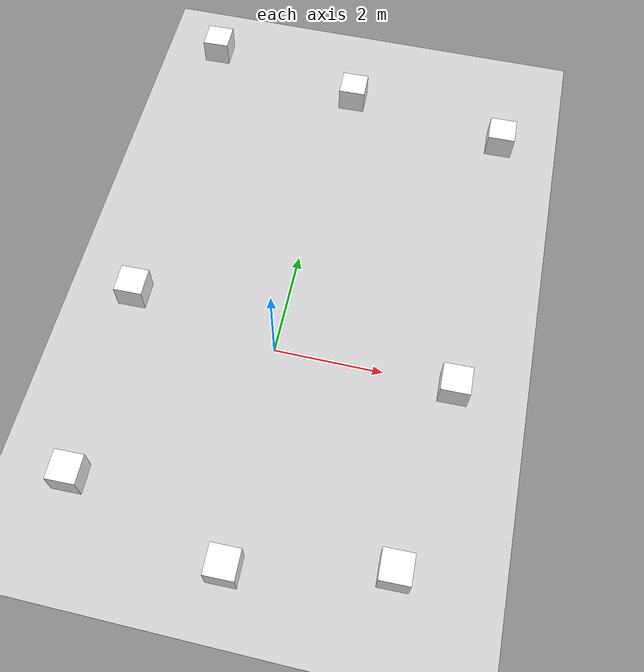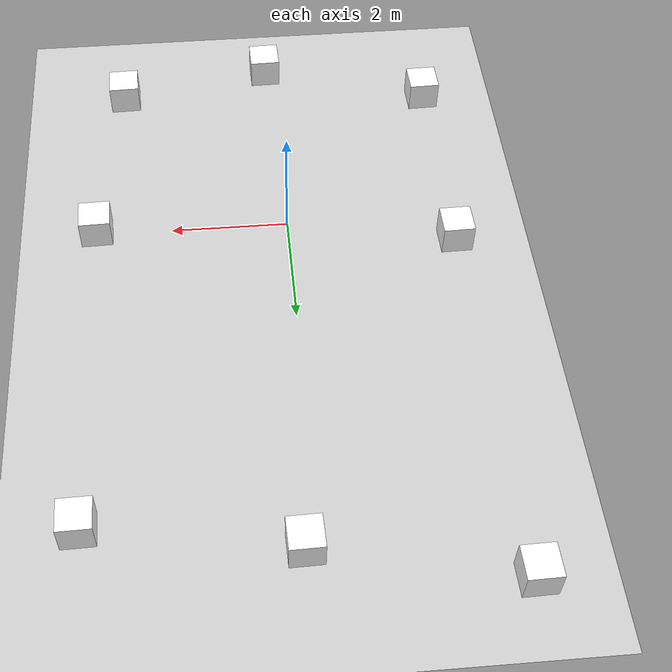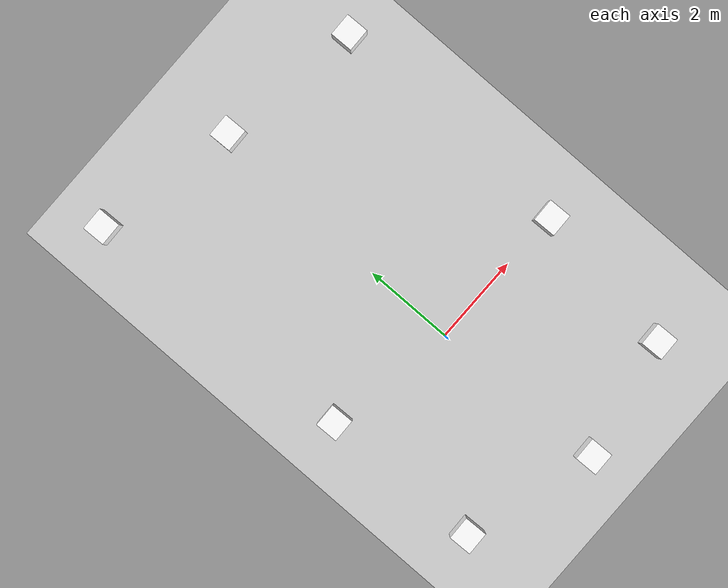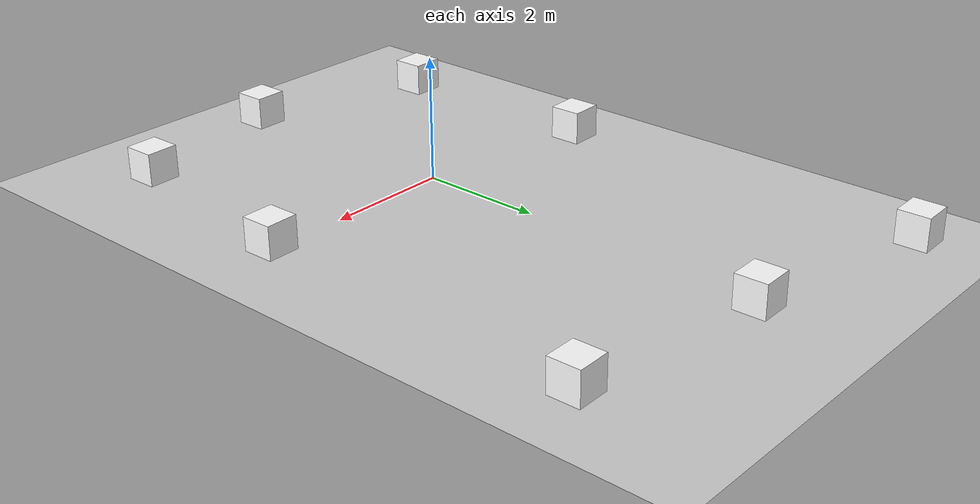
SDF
<sdf version="1.6">
 <world name="default">
  <light name="sun" type="directional">
   <pose>0 0 10 0 -0 0</pose>
   <diffuse>0.8 0.8 0.8 1</diffuse>
   <specular>0.1 0.1 0.1 1</specular>
   <attenuation>
    <range>1000</range>
    <constant>0.9</constant>
    <linear>0.01</linear>
    <quadratic>0.001</quadratic>
   </attenuation>
   <direction>-0.5 0.5 -1</direction>
  </light>
  <plugin name="SetupWorld" filename="libgazebo_plugins.so"/>
  <gravity>0 0 -9.8</gravity>
  <magnetic_field>6e-06 2.3e-05 -4.2e-05</magnetic_field>
  <atmosphere type="adiabatic"/>
  <physics name="default_physics" default="0" type="ode">
   <max_step_size>0.001</max_step_size>
   <real_time_factor>1</real_time_factor>
   <real_time_update_rate>1000</real_time_update_rate>
  </physics>
  <scene><ambient>0.4 0.4 0.4 1</ambient><background>0.7 0.7 0.7 1</background><shadows>1</shadows></scene>
  <spherical_coordinates>
   <surface_model>EARTH_WGS84</surface_model>
   <latitude_deg>0</latitude_deg>
   <longitude_deg>0</longitude_deg>
   <elevation>0</elevation>
   <heading_deg>0</heading_deg>
  </spherical_coordinates>
  <model name="mars_ground_plane">
   <static>1</static>
   <link name="link">
    <collision name="collision">
     <geometry><plane><normal>0 0 1</normal><size>100 100</size></plane></geometry>
     <surface><friction><ode><mu>100</mu><mu2>50</mu2></ode></friction></surface>
    </collision>
    <visual name="visual">
     <cast_shadows>0</cast_shadows>
     <geometry><plane><normal>0 0 1</normal><size>100 100</size></plane></geometry>
     <material>
      <script>
       <uri>model://media/materials/scripts</uri>
       <uri>model://media/materials/textures</uri>
       <name>MarsGroundPlane/Image</name>
      </script>
     </material>
    </visual>
   </link>
   <pose>-3.24107 -2.03706 1e-06 0 -0 0</pose>
  </model>
  <model name="at0_2">
   <link name="link">
    <inertial>
     <mass>0.01</mass>
     <inertia><ixx>4e-05</ixx><ixy>0</ixy><ixz>0</ixz><iyy>4e-05</iyy><iyz>0</iyz><izz>4e-05</izz></inertia>
    </inertial>
    <visual name="visual">
     <geometry><box><size>0.5 0.5 0.5</size></box></geometry>
     <material>
      <script>
       <uri>model://at0/materials/scripts</uri>
       <uri>model://at0/materials/textures</uri>
       <name>at0/Diffuse</name>
      </script>
      <ambient>1 1 1 1</ambient>
      <diffuse>1 1 1 1</diffuse>
      <specular>0 0 0 1</specular>
      <emissive>0 0 0 1</emissive>
      <shader type="vertex"><normal_map>__default__</normal_map></shader>
     </material>
    </visual>
    <visual name="ModelPreview_8::link::visual_2">
     <geometry><box><size>0.528063 0.520416 0.556558</size></box></geometry>
     <material>
      <script>
       <uri>model://at0/materials/scripts</uri>
       <uri>model://at0/materials/textures</uri>
       <name>at0/Diffuse</name>
      </script>
      <ambient>1 1 1 1</ambient>
      <diffuse>1 1 1 1</diffuse>
      <specular>0 0 0 1</specular>
      <emissive>0 0 0 1</emissive>
      <shader type="vertex"><normal_map>__default__</normal_map></shader>
     </material>
    </visual>
    <visual name="ModelPreview_8::link::visual_3">
     <geometry><box><size>0.528063 0.520416 0.556558</size></box></geometry>
     <material>
      <script>
       <uri>model://at0/materials/scripts</uri>
       <uri>model://at0/materials/textures</uri>
       <name>at0/Diffuse</name>
      </script>
      <ambient>1 1 1 1</ambient>
      <diffuse>1 1 1 1</diffuse>
      <specular>0 0 0 1</specular>
      <emissive>0 0 0 1</emissive>
      <shader type="vertex"><normal_map>__default__</normal_map></shader>
     </material>
    </visual>
    <visual name="ModelPreview_8::link::visual_1">
     <geometry><box><size>0.528063 0.520416 0.556558</size></box></geometry>
     <material>
      <script>
       <uri>model://at0/materials/scripts</uri>
       <uri>model://at0/materials/textures</uri>
       <name>at0/Diffuse</name>
      </script>
      <ambient>1 1 1 1</ambient>
      <diffuse>1 1 1 1</diffuse>
      <specular>0 0 0 1</specular>
      <emissive>0 0 0 1</emissive>
      <shader type="vertex"><normal_map>__default__</normal_map></shader>
     </material>
    </visual>
    <collision name="collision">
     <geometry><box><size>0.5 0.5 0.5</size></box></geometry>
     <surface>
      <friction>
       <ode><mu>0.8</mu><mu2>0.7</mu2><fdir1>0 0 0</fdir1><slip1>0</slip1><slip2>0</slip2></ode>
       <torsional>
        <coefficient>1</coefficient>
        <patch_radius>0</patch_radius>
        <surface_radius>0</surface_radius>
        <use_patch_radius>1</use_patch_radius>
        <ode><slip>0</slip></ode>
       </torsional>
      </friction>
      <bounce><restitution_coefficient>0</restitution_coefficient><threshold>1e+06</threshold></bounce>
      <contact>
       <collide_without_contact>0</collide_without_contact>
       <collide_without_contact_bitmask>1</collide_without_contact_bitmask>
       <collide_bitmask>1</collide_bitmask>
       <ode>
        <soft_cfm>0</soft_cfm>
        <soft_erp>0.2</soft_erp>
        <kp>1e+13</kp>
        <kd>1</kd>
        <max_vel>0.01</max_vel>
        <min_depth>0</min_depth>
       </ode>
       <bullet>
        <split_impulse>1</split_impulse>
        <split_impulse_penetration_threshold>-0.01</split_impulse_penetration_threshold>
        <soft_cfm>0</soft_cfm>
        <soft_erp>0.2</soft_erp>
        <kp>1e+13</kp>
        <kd>1</kd>
       </bullet>
      </contact>
     </surface>
    </collision>
   </link>
   <static>0</static>
   <pose>-2.79337 -3.03023 0.249996 0 1.7e-05 0.024549</pose>
  </model>
  <model name="Barrier Prelim Round">
   <static>1</static>
   <link name="link">
    <inertial>
     <mass>1</mass>
     <inertia><ixx>0.083</ixx><ixy>0</ixy><ixz>0</ixz><iyy>0</iyy><iyz>0</iyz><izz>0.083</izz></inertia>
    </inertial>
    <collision name="collision">
     <geometry><box><size>0.05 15 0.33</size></box></geometry>
     <surface><friction><ode><mu>1</mu><mu2>1</mu2><slip1>0</slip1><slip2>0</slip2></ode></friction></surface>
    </collision>
    <visual name="visual">
     <geometry><box><size>0.05 15 0.33</size></box></geometry>
     <material>
      <ambient>255 131 0 1</ambient>
      <diffuse>255 131 0 1</diffuse>
      <specular>0.1 0.1 0.1 1</specular>
      <emissive>0 0 0 0</emissive>
     </material>
    </visual>
   </link>
   <pose>-4.02381 0.804418 0 0 -0 0</pose>
  </model>
  <model name="Barrier Prelim Round_0">
   <static>1</static>
   <link name="link">
    <inertial>
     <mass>1</mass>
     <inertia><ixx>0.083</ixx><ixy>0</ixy><ixz>0</ixz><iyy>0</iyy><iyz>0</iyz><izz>0.083</izz></inertia>
    </inertial>
    <collision name="collision">
     <geometry><box><size>0.05 15 0.33</size></box></geometry>
     <surface><friction><ode><mu>1</mu><mu2>1</mu2><slip1>0</slip1><slip2>0</slip2></ode></friction></surface>
    </collision>
    <visual name="visual">
     <geometry><box><size>0.05 15 0.33</size></box></geometry>
     <material>
      <ambient>255 131 0 1</ambient>
      <diffuse>255 131 0 1</diffuse>
      <specular>0.1 0.1 0.1 1</specular>
      <emissive>0 0 0 0</emissive>
     </material>
    </visual>
   </link>
   <pose>4.04025 0.918707 0 0 -0 0</pose>
  </model>
  <model name="Barrier Prelim Round_1">
   <static>1</static>
   <link name="link">
    <inertial>
     <mass>1</mass>
     <inertia><ixx>0.083</ixx><ixy>0</ixy><ixz>0</ixz><iyy>0</iyy><iyz>0</iyz><izz>0.083</izz></inertia>
    </inertial>
    <collision name="collision">
     <geometry><box><size>0.05 15 0.33</size></box></geometry>
     <surface><friction><ode><mu>1</mu><mu2>1</mu2><slip1>0</slip1><slip2>0</slip2></ode></friction></surface>
    </collision>
    <visual name="visual">
     <geometry><box><size>0.05 15 0.33</size></box></geometry>
     <material>
      <ambient>255 131 0 1</ambient>
      <diffuse>255 131 0 1</diffuse>
      <specular>0.1 0.1 0.1 1</specular>
      <emissive>0 0 0 0</emissive>
     </material>
    </visual>
   </link>
   <pose>0.004597 8.34456 0 0 0 -1.55768</pose>
  </model>
  <model name="Barrier Prelim Round_1_clone">
   <static>1</static>
   <link name="link">
    <inertial>
     <mass>1</mass>
     <inertia><ixx>0.083</ixx><ixy>0</ixy><ixz>0</ixz><iyy>0</iyy><iyz>0</iyz><izz>0.083</izz></inertia>
    </inertial>
    <collision name="collision">
     <geometry><box><size>0.05 15 0.33</size></box></geometry>
     <surface><friction><ode><mu>1</mu><mu2>1</mu2><slip1>0</slip1><slip2>0</slip2></ode></friction></surface>
    </collision>
    <visual name="visual">
     <geometry><box><size>0.05 15 0.33</size></box></geometry>
     <material>
      <ambient>255 131 0 1</ambient>
      <diffuse>255 131 0 1</diffuse>
      <specular>0.1 0.1 0.1 1</specular>
      <emissive>0 0 0 0</emissive>
     </material>
    </visual>
   </link>
   <pose>0.695564 -4.56386 0 0 0 -1.55768</pose>
  </model>
  <model name="at0_2_clone">
   <link name="link">
    <inertial>
     <mass>0.01</mass>
     <inertia><ixx>4e-05</ixx><ixy>0</ixy><ixz>0</ixz><iyy>4e-05</iyy><iyz>0</iyz><izz>4e-05</izz></inertia>
    </inertial>
    <visual name="visual">
     <geometry><box><size>0.5 0.5 0.5</size></box></geometry>
     <material>
      <script>
       <uri>model://at0/materials/scripts</uri>
       <uri>model://at0/materials/textures</uri>
       <name>at0/Diffuse</name>
      </script>
      <ambient>1 1 1 1</ambient>
      <diffuse>1 1 1 1</diffuse>
      <specular>0 0 0 1</specular>
      <emissive>0 0 0 1</emissive>
      <shader type="vertex"><normal_map>__default__</normal_map></shader>
     </material>
    </visual>
    <visual name="ModelPreview_8::link::visual_2">
     <geometry><box><size>0.528063 0.520416 0.556558</size></box></geometry>
     <material>
      <script>
       <uri>model://at0/materials/scripts</uri>
       <uri>model://at0/materials/textures</uri>
       <name>at0/Diffuse</name>
      </script>
      <ambient>1 1 1 1</ambient>
      <diffuse>1 1 1 1</diffuse>
      <specular>0 0 0 1</specular>
      <emissive>0 0 0 1</emissive>
      <shader type="vertex"><normal_map>__default__</normal_map></shader>
     </material>
    </visual>
    <visual name="ModelPreview_8::link::visual_3">
     <geometry><box><size>0.528063 0.520416 0.556558</size></box></geometry>
     <material>
      <script>
       <uri>model://at0/materials/scripts</uri>
       <uri>model://at0/materials/textures</uri>
       <name>at0/Diffuse</name>
      </script>
      <ambient>1 1 1 1</ambient>
      <diffuse>1 1 1 1</diffuse>
      <specular>0 0 0 1</specular>
      <emissive>0 0 0 1</emissive>
      <shader type="vertex"><normal_map>__default__</normal_map></shader>
     </material>
    </visual>
    <visual name="ModelPreview_8::link::visual_1">
     <geometry><box><size>0.528063 0.520416 0.556558</size></box></geometry>
     <material>
      <script>
       <uri>model://at0/materials/scripts</uri>
       <uri>model://at0/materials/textures</uri>
       <name>at0/Diffuse</name>
      </script>
      <ambient>1 1 1 1</ambient>
      <diffuse>1 1 1 1</diffuse>
      <specular>0 0 0 1</specular>
      <emissive>0 0 0 1</emissive>
      <shader type="vertex"><normal_map>__default__</normal_map></shader>
     </material>
    </visual>
    <collision name="collision">
     <geometry><box><size>0.5 0.5 0.5</size></box></geometry>
     <surface>
      <friction>
       <ode><mu>0.8</mu><mu2>0.7</mu2><fdir1>0 0 0</fdir1><slip1>0</slip1><slip2>0</slip2></ode>
       <torsional>
        <coefficient>1</coefficient>
        <patch_radius>0</patch_radius>
        <surface_radius>0</surface_radius>
        <use_patch_radius>1</use_patch_radius>
        <ode><slip>0</slip></ode>
       </torsional>
      </friction>
      <bounce><restitution_coefficient>0</restitution_coefficient><threshold>1e+06</threshold></bounce>
      <contact>
       <collide_without_contact>0</collide_without_contact>
       <collide_without_contact_bitmask>1</collide_without_contact_bitmask>
       <collide_bitmask>1</collide_bitmask>
       <ode>
        <soft_cfm>0</soft_cfm>
        <soft_erp>0.2</soft_erp>
        <kp>1e+13</kp>
        <kd>1</kd>
        <max_vel>0.01</max_vel>
        <min_depth>0</min_depth>
       </ode>
       <bullet>
        <split_impulse>1</split_impulse>
        <split_impulse_penetration_threshold>-0.01</split_impulse_penetration_threshold>
        <soft_cfm>0</soft_cfm>
        <soft_erp>0.2</soft_erp>
        <kp>1e+13</kp>
        <kd>1</kd>
       </bullet>
      </contact>
     </surface>
    </collision>
   </link>
   <static>0</static>
   <pose>2.81306 -3.38791 0.25 -2e-06 -7e-06 0.023993</pose>
  </model>
  <model name="at0_2_clone_0">
   <link name="link">
    <inertial>
     <mass>0.01</mass>
     <inertia><ixx>4e-05</ixx><ixy>0</ixy><ixz>0</ixz><iyy>4e-05</iyy><iyz>0</iyz><izz>4e-05</izz></inertia>
    </inertial>
    <visual name="visual">
     <geometry><box><size>0.5 0.5 0.5</size></box></geometry>
     <material>
      <script>
       <uri>model://at0/materials/scripts</uri>
       <uri>model://at0/materials/textures</uri>
       <name>at0/Diffuse</name>
      </script>
      <ambient>1 1 1 1</ambient>
      <diffuse>1 1 1 1</diffuse>
      <specular>0 0 0 1</specular>
      <emissive>0 0 0 1</emissive>
      <shader type="vertex"><normal_map>__default__</normal_map></shader>
     </material>
    </visual>
    <visual name="ModelPreview_8::link::visual_2">
     <geometry><box><size>0.528063 0.520416 0.556558</size></box></geometry>
     <material>
      <script>
       <uri>model://at0/materials/scripts</uri>
       <uri>model://at0/materials/textures</uri>
       <name>at0/Diffuse</name>
      </script>
      <ambient>1 1 1 1</ambient>
      <diffuse>1 1 1 1</diffuse>
      <specular>0 0 0 1</specular>
      <emissive>0 0 0 1</emissive>
      <shader type="vertex"><normal_map>__default__</normal_map></shader>
     </material>
    </visual>
    <visual name="ModelPreview_8::link::visual_3">
     <geometry><box><size>0.528063 0.520416 0.556558</size></box></geometry>
     <material>
      <script>
       <uri>model://at0/materials/scripts</uri>
       <uri>model://at0/materials/textures</uri>
       <name>at0/Diffuse</name>
      </script>
      <ambient>1 1 1 1</ambient>
      <diffuse>1 1 1 1</diffuse>
      <specular>0 0 0 1</specular>
      <emissive>0 0 0 1</emissive>
      <shader type="vertex"><normal_map>__default__</normal_map></shader>
     </material>
    </visual>
    <visual name="ModelPreview_8::link::visual_1">
     <geometry><box><size>0.528063 0.520416 0.556558</size></box></geometry>
     <material>
      <script>
       <uri>model://at0/materials/scripts</uri>
       <uri>model://at0/materials/textures</uri>
       <name>at0/Diffuse</name>
      </script>
      <ambient>1 1 1 1</ambient>
      <diffuse>1 1 1 1</diffuse>
      <specular>0 0 0 1</specular>
      <emissive>0 0 0 1</emissive>
      <shader type="vertex"><normal_map>__default__</normal_map></shader>
     </material>
    </visual>
    <collision name="collision">
     <geometry><box><size>0.5 0.5 0.5</size></box></geometry>
     <surface>
      <friction>
       <ode><mu>0.8</mu><mu2>0.7</mu2><fdir1>0 0 0</fdir1><slip1>0</slip1><slip2>0</slip2></ode>
       <torsional>
        <coefficient>1</coefficient>
        <patch_radius>0</patch_radius>
        <surface_radius>0</surface_radius>
        <use_patch_radius>1</use_patch_radius>
        <ode><slip>0</slip></ode>
       </torsional>
      </friction>
      <bounce><restitution_coefficient>0</restitution_coefficient><threshold>1e+06</threshold></bounce>
      <contact>
       <collide_without_contact>0</collide_without_contact>
       <collide_without_contact_bitmask>1</collide_without_contact_bitmask>
       <collide_bitmask>1</collide_bitmask>
       <ode>
        <soft_cfm>0</soft_cfm>
        <soft_erp>0.2</soft_erp>
        <kp>1e+13</kp>
        <kd>1</kd>
        <max_vel>0.01</max_vel>
        <min_depth>0</min_depth>
       </ode>
       <bullet>
        <split_impulse>1</split_impulse>
        <split_impulse_penetration_threshold>-0.01</split_impulse_penetration_threshold>
        <soft_cfm>0</soft_cfm>
        <soft_erp>0.2</soft_erp>
        <kp>1e+13</kp>
        <kd>1</kd>
       </bullet>
      </contact>
     </surface>
    </collision>
   </link>
   <static>0</static>
   <pose>3.42848 5.60927 0.249996 0 -1.7e-05 0.017253</pose>
  </model>
  <model name="at0_2_clone_1">
   <link name="link">
    <inertial>
     <mass>0.01</mass>
     <inertia><ixx>4e-05</ixx><ixy>0</ixy><ixz>0</ixz><iyy>4e-05</iyy><iyz>0</iyz><izz>4e-05</izz></inertia>
    </inertial>
    <visual name="visual">
     <geometry><box><size>0.5 0.5 0.5</size></box></geometry>
     <material>
      <script>
       <uri>model://at0/materials/scripts</uri>
       <uri>model://at0/materials/textures</uri>
       <name>at0/Diffuse</name>
      </script>
      <ambient>1 1 1 1</ambient>
      <diffuse>1 1 1 1</diffuse>
      <specular>0 0 0 1</specular>
      <emissive>0 0 0 1</emissive>
      <shader type="vertex"><normal_map>__default__</normal_map></shader>
     </material>
    </visual>
    <visual name="ModelPreview_8::link::visual_2">
     <geometry><box><size>0.528063 0.520416 0.556558</size></box></geometry>
     <material>
      <script>
       <uri>model://at0/materials/scripts</uri>
       <uri>model://at0/materials/textures</uri>
       <name>at0/Diffuse</name>
      </script>
      <ambient>1 1 1 1</ambient>
      <diffuse>1 1 1 1</diffuse>
      <specular>0 0 0 1</specular>
      <emissive>0 0 0 1</emissive>
      <shader type="vertex"><normal_map>__default__</normal_map></shader>
     </material>
    </visual>
    <visual name="ModelPreview_8::link::visual_3">
     <geometry><box><size>0.528063 0.520416 0.556558</size></box></geometry>
     <material>
      <script>
       <uri>model://at0/materials/scripts</uri>
       <uri>model://at0/materials/textures</uri>
       <name>at0/Diffuse</name>
      </script>
      <ambient>1 1 1 1</ambient>
      <diffuse>1 1 1 1</diffuse>
      <specular>0 0 0 1</specular>
      <emissive>0 0 0 1</emissive>
      <shader type="vertex"><normal_map>__default__</normal_map></shader>
     </material>
    </visual>
    <visual name="ModelPreview_8::link::visual_1">
     <geometry><box><size>0.528063 0.520416 0.556558</size></box></geometry>
     <material>
      <script>
       <uri>model://at0/materials/scripts</uri>
       <uri>model://at0/materials/textures</uri>
       <name>at0/Diffuse</name>
      </script>
      <ambient>1 1 1 1</ambient>
      <diffuse>1 1 1 1</diffuse>
      <specular>0 0 0 1</specular>
      <emissive>0 0 0 1</emissive>
      <shader type="vertex"><normal_map>__default__</normal_map></shader>
     </material>
    </visual>
    <collision name="collision">
     <geometry><box><size>0.5 0.5 0.5</size></box></geometry>
     <surface>
      <friction>
       <ode><mu>0.8</mu><mu2>0.7</mu2><fdir1>0 0 0</fdir1><slip1>0</slip1><slip2>0</slip2></ode>
       <torsional>
        <coefficient>1</coefficient>
        <patch_radius>0</patch_radius>
        <surface_radius>0</surface_radius>
        <use_patch_radius>1</use_patch_radius>
        <ode><slip>0</slip></ode>
       </torsional>
      </friction>
      <bounce><restitution_coefficient>0</restitution_coefficient><threshold>1e+06</threshold></bounce>
      <contact>
       <collide_without_contact>0</collide_without_contact>
       <collide_without_contact_bitmask>1</collide_without_contact_bitmask>
       <collide_bitmask>1</collide_bitmask>
       <ode>
        <soft_cfm>0</soft_cfm>
        <soft_erp>0.2</soft_erp>
        <kp>1e+13</kp>
        <kd>1</kd>
        <max_vel>0.01</max_vel>
        <min_depth>0</min_depth>
       </ode>
       <bullet>
        <split_impulse>1</split_impulse>
        <split_impulse_penetration_threshold>-0.01</split_impulse_penetration_threshold>
        <soft_cfm>0</soft_cfm>
        <soft_erp>0.2</soft_erp>
        <kp>1e+13</kp>
        <kd>1</kd>
       </bullet>
      </contact>
     </surface>
    </collision>
   </link>
   <static>0</static>
   <pose>0.224974 6.14431 0.25 2e-06 7e-06 0.021459</pose>
  </model>
  <model name="at0_2_clone_2">
   <link name="link">
    <inertial>
     <mass>0.01</mass>
     <inertia><ixx>4e-05</ixx><ixy>0</ixy><ixz>0</ixz><iyy>4e-05</iyy><iyz>0</iyz><izz>4e-05</izz></inertia>
    </inertial>
    <visual name="visual">
     <geometry><box><size>0.5 0.5 0.5</size></box></geometry>
     <material>
      <script>
       <uri>model://at0/materials/scripts</uri>
       <uri>model://at0/materials/textures</uri>
       <name>at0/Diffuse</name>
      </script>
      <ambient>1 1 1 1</ambient>
      <diffuse>1 1 1 1</diffuse>
      <specular>0 0 0 1</specular>
      <emissive>0 0 0 1</emissive>
      <shader type="vertex"><normal_map>__default__</normal_map></shader>
     </material>
    </visual>
    <visual name="ModelPreview_8::link::visual_2">
     <geometry><box><size>0.528063 0.520416 0.556558</size></box></geometry>
     <material>
      <script>
       <uri>model://at0/materials/scripts</uri>
       <uri>model://at0/materials/textures</uri>
       <name>at0/Diffuse</name>
      </script>
      <ambient>1 1 1 1</ambient>
      <diffuse>1 1 1 1</diffuse>
      <specular>0 0 0 1</specular>
      <emissive>0 0 0 1</emissive>
      <shader type="vertex"><normal_map>__default__</normal_map></shader>
     </material>
    </visual>
    <visual name="ModelPreview_8::link::visual_3">
     <geometry><box><size>0.528063 0.520416 0.556558</size></box></geometry>
     <material>
      <script>
       <uri>model://at0/materials/scripts</uri>
       <uri>model://at0/materials/textures</uri>
       <name>at0/Diffuse</name>
      </script>
      <ambient>1 1 1 1</ambient>
      <diffuse>1 1 1 1</diffuse>
      <specular>0 0 0 1</specular>
      <emissive>0 0 0 1</emissive>
      <shader type="vertex"><normal_map>__default__</normal_map></shader>
     </material>
    </visual>
    <visual name="ModelPreview_8::link::visual_1">
     <geometry><box><size>0.528063 0.520416 0.556558</size></box></geometry>
     <material>
      <script>
       <uri>model://at0/materials/scripts</uri>
       <uri>model://at0/materials/textures</uri>
       <name>at0/Diffuse</name>
      </script>
      <ambient>1 1 1 1</ambient>
      <diffuse>1 1 1 1</diffuse>
      <specular>0 0 0 1</specular>
      <emissive>0 0 0 1</emissive>
      <shader type="vertex"><normal_map>__default__</normal_map></shader>
     </material>
    </visual>
    <collision name="collision">
     <geometry><box><size>0.5 0.5 0.5</size></box></geometry>
     <surface>
      <friction>
       <ode><mu>0.8</mu><mu2>0.7</mu2><fdir1>0 0 0</fdir1><slip1>0</slip1><slip2>0</slip2></ode>
       <torsional>
        <coefficient>1</coefficient>
        <patch_radius>0</patch_radius>
        <surface_radius>0</surface_radius>
        <use_patch_radius>1</use_patch_radius>
        <ode><slip>0</slip></ode>
       </torsional>
      </friction>
      <bounce><restitution_coefficient>0</restitution_coefficient><threshold>1e+06</threshold></bounce>
      <contact>
       <collide_without_contact>0</collide_without_contact>
       <collide_without_contact_bitmask>1</collide_without_contact_bitmask>
       <collide_bitmask>1</collide_bitmask>
       <ode>
        <soft_cfm>0</soft_cfm>
        <soft_erp>0.2</soft_erp>
        <kp>1e+13</kp>
        <kd>1</kd>
        <max_vel>0.01</max_vel>
        <min_depth>0</min_depth>
       </ode>
       <bullet>
        <split_impulse>1</split_impulse>
        <split_impulse_penetration_threshold>-0.01</split_impulse_penetration_threshold>
        <soft_cfm>0</soft_cfm>
        <soft_erp>0.2</soft_erp>
        <kp>1e+13</kp>
        <kd>1</kd>
       </bullet>
      </contact>
     </surface>
    </collision>
   </link>
   <static>0</static>
   <pose>-2.93462 6.84105 0.249996 0 -1.7e-05 0.020189</pose>
  </model>
  <model name="at0_2_clone_1_clone">
   <link name="link">
    <inertial>
     <mass>0.01</mass>
     <inertia><ixx>4e-05</ixx><ixy>0</ixy><ixz>0</ixz><iyy>4e-05</iyy><iyz>0</iyz><izz>4e-05</izz></inertia>
    </inertial>
    <visual name="visual">
     <geometry><box><size>0.5 0.5 0.5</size></box></geometry>
     <material>
      <script>
       <uri>model://at0/materials/scripts</uri>
       <uri>model://at0/materials/textures</uri>
       <name>at0/Diffuse</name>
      </script>
      <ambient>1 1 1 1</ambient>
      <diffuse>1 1 1 1</diffuse>
      <specular>0 0 0 1</specular>
      <emissive>0 0 0 1</emissive>
      <shader type="vertex"><normal_map>__default__</normal_map></shader>
     </material>
    </visual>
    <visual name="ModelPreview_8::link::visual_2">
     <geometry><box><size>0.528063 0.520416 0.556558</size></box></geometry>
     <material>
      <script>
       <uri>model://at0/materials/scripts</uri>
       <uri>model://at0/materials/textures</uri>
       <name>at0/Diffuse</name>
      </script>
      <ambient>1 1 1 1</ambient>
      <diffuse>1 1 1 1</diffuse>
      <specular>0 0 0 1</specular>
      <emissive>0 0 0 1</emissive>
      <shader type="vertex"><normal_map>__default__</normal_map></shader>
     </material>
    </visual>
    <visual name="ModelPreview_8::link::visual_3">
     <geometry><box><size>0.528063 0.520416 0.556558</size></box></geometry>
     <material>
      <script>
       <uri>model://at0/materials/scripts</uri>
       <uri>model://at0/materials/textures</uri>
       <name>at0/Diffuse</name>
      </script>
      <ambient>1 1 1 1</ambient>
      <diffuse>1 1 1 1</diffuse>
      <specular>0 0 0 1</specular>
      <emissive>0 0 0 1</emissive>
      <shader type="vertex"><normal_map>__default__</normal_map></shader>
     </material>
    </visual>
    <visual name="ModelPreview_8::link::visual_1">
     <geometry><box><size>0.528063 0.520416 0.556558</size></box></geometry>
     <material>
      <script>
       <uri>model://at0/materials/scripts</uri>
       <uri>model://at0/materials/textures</uri>
       <name>at0/Diffuse</name>
      </script>
      <ambient>1 1 1 1</ambient>
      <diffuse>1 1 1 1</diffuse>
      <specular>0 0 0 1</specular>
      <emissive>0 0 0 1</emissive>
      <shader type="vertex"><normal_map>__default__</normal_map></shader>
     </material>
    </visual>
    <collision name="collision">
     <geometry><box><size>0.5 0.5 0.5</size></box></geometry>
     <surface>
      <friction>
       <ode><mu>0.8</mu><mu2>0.7</mu2><fdir1>0 0 0</fdir1><slip1>0</slip1><slip2>0</slip2></ode>
       <torsional>
        <coefficient>1</coefficient>
        <patch_radius>0</patch_radius>
        <surface_radius>0</surface_radius>
        <use_patch_radius>1</use_patch_radius>
        <ode><slip>0</slip></ode>
       </torsional>
      </friction>
      <bounce><restitution_coefficient>0</restitution_coefficient><threshold>1e+06</threshold></bounce>
      <contact>
       <collide_without_contact>0</collide_without_contact>
       <collide_without_contact_bitmask>1</collide_without_contact_bitmask>
       <collide_bitmask>1</collide_bitmask>
       <ode>
        <soft_cfm>0</soft_cfm>
        <soft_erp>0.2</soft_erp>
        <kp>1e+13</kp>
        <kd>1</kd>
        <max_vel>0.01</max_vel>
        <min_depth>0</min_depth>
       </ode>
       <bullet>
        <split_impulse>1</split_impulse>
        <split_impulse_penetration_threshold>-0.01</split_impulse_penetration_threshold>
        <soft_cfm>0</soft_cfm>
        <soft_erp>0.2</soft_erp>
        <kp>1e+13</kp>
        <kd>1</kd>
       </bullet>
      </contact>
     </surface>
    </collision>
   </link>
   <static>0</static>
   <pose>3.286 -0.045976 0.25 2e-06 7e-06 0.021459</pose>
  </model>
  <model name="at0_2_clone_1_clone_0">
   <link name="link">
    <inertial>
     <mass>0.01</mass>
     <inertia><ixx>4e-05</ixx><ixy>0</ixy><ixz>0</ixz><iyy>4e-05</iyy><iyz>0</iyz><izz>4e-05</izz></inertia>
    </inertial>
    <visual name="visual">
     <geometry><box><size>0.5 0.5 0.5</size></box></geometry>
     <material>
      <script>
       <uri>model://at0/materials/scripts</uri>
       <uri>model://at0/materials/textures</uri>
       <name>at0/Diffuse</name>
      </script>
      <ambient>1 1 1 1</ambient>
      <diffuse>1 1 1 1</diffuse>
      <specular>0 0 0 1</specular>
      <emissive>0 0 0 1</emissive>
      <shader type="vertex"><normal_map>__default__</normal_map></shader>
     </material>
    </visual>
    <visual name="ModelPreview_8::link::visual_2">
     <geometry><box><size>0.528063 0.520416 0.556558</size></box></geometry>
     <material>
      <script>
       <uri>model://at0/materials/scripts</uri>
       <uri>model://at0/materials/textures</uri>
       <name>at0/Diffuse</name>
      </script>
      <ambient>1 1 1 1</ambient>
      <diffuse>1 1 1 1</diffuse>
      <specular>0 0 0 1</specular>
      <emissive>0 0 0 1</emissive>
      <shader type="vertex"><normal_map>__default__</normal_map></shader>
     </material>
    </visual>
    <visual name="ModelPreview_8::link::visual_3">
     <geometry><box><size>0.528063 0.520416 0.556558</size></box></geometry>
     <material>
      <script>
       <uri>model://at0/materials/scripts</uri>
       <uri>model://at0/materials/textures</uri>
       <name>at0/Diffuse</name>
      </script>
      <ambient>1 1 1 1</ambient>
      <diffuse>1 1 1 1</diffuse>
      <specular>0 0 0 1</specular>
      <emissive>0 0 0 1</emissive>
      <shader type="vertex"><normal_map>__default__</normal_map></shader>
     </material>
    </visual>
    <visual name="ModelPreview_8::link::visual_1">
     <geometry><box><size>0.528063 0.520416 0.556558</size></box></geometry>
     <material>
      <script>
       <uri>model://at0/materials/scripts</uri>
       <uri>model://at0/materials/textures</uri>
       <name>at0/Diffuse</name>
      </script>
      <ambient>1 1 1 1</ambient>
      <diffuse>1 1 1 1</diffuse>
      <specular>0 0 0 1</specular>
      <emissive>0 0 0 1</emissive>
      <shader type="vertex"><normal_map>__default__</normal_map></shader>
     </material>
    </visual>
    <collision name="collision">
     <geometry><box><size>0.5 0.5 0.5</size></box></geometry>
     <surface>
      <friction>
       <ode><mu>0.8</mu><mu2>0.7</mu2><fdir1>0 0 0</fdir1><slip1>0</slip1><slip2>0</slip2></ode>
       <torsional>
        <coefficient>1</coefficient>
        <patch_radius>0</patch_radius>
        <surface_radius>0</surface_radius>
        <use_patch_radius>1</use_patch_radius>
        <ode><slip>0</slip></ode>
       </torsional>
      </friction>
      <bounce><restitution_coefficient>0</restitution_coefficient><threshold>1e+06</threshold></bounce>
      <contact>
       <collide_without_contact>0</collide_without_contact>
       <collide_without_contact_bitmask>1</collide_without_contact_bitmask>
       <collide_bitmask>1</collide_bitmask>
       <ode>
        <soft_cfm>0</soft_cfm>
        <soft_erp>0.2</soft_erp>
        <kp>1e+13</kp>
        <kd>1</kd>
        <max_vel>0.01</max_vel>
        <min_depth>0</min_depth>
       </ode>
       <bullet>
        <split_impulse>1</split_impulse>
        <split_impulse_penetration_threshold>-0.01</split_impulse_penetration_threshold>
        <soft_cfm>0</soft_cfm>
        <soft_erp>0.2</soft_erp>
        <kp>1e+13</kp>
        <kd>1</kd>
       </bullet>
      </contact>
     </surface>
    </collision>
   </link>
   <static>0</static>
   <pose>-2.84162 0.572319 0.249996 0 -1.7e-05 0.020182</pose>
  </model>
  <model name="at0_2_clone_1_clone_1">
   <link name="link">
    <inertial>
     <mass>0.01</mass>
     <inertia><ixx>4e-05</ixx><ixy>0</ixy><ixz>0</ixz><iyy>4e-05</iyy><iyz>0</iyz><izz>4e-05</izz></inertia>
    </inertial>
    <visual name="visual">
     <geometry><box><size>0.5 0.5 0.5</size></box></geometry>
     <material>
      <script>
       <uri>model://at0/materials/scripts</uri>
       <uri>model://at0/materials/textures</uri>
       <name>at0/Diffuse</name>
      </script>
      <ambient>1 1 1 1</ambient>
      <diffuse>1 1 1 1</diffuse>
      <specular>0 0 0 1</specular>
      <emissive>0 0 0 1</emissive>
      <shader type="vertex"><normal_map>__default__</normal_map></shader>
     </material>
    </visual>
    <visual name="ModelPreview_8::link::visual_2">
     <geometry><box><size>0.528063 0.520416 0.556558</size></box></geometry>
     <material>
      <script>
       <uri>model://at0/materials/scripts</uri>
       <uri>model://at0/materials/textures</uri>
       <name>at0/Diffuse</name>
      </script>
      <ambient>1 1 1 1</ambient>
      <diffuse>1 1 1 1</diffuse>
      <specular>0 0 0 1</specular>
      <emissive>0 0 0 1</emissive>
      <shader type="vertex"><normal_map>__default__</normal_map></shader>
     </material>
    </visual>
    <visual name="ModelPreview_8::link::visual_3">
     <geometry><box><size>0.528063 0.520416 0.556558</size></box></geometry>
     <material>
      <script>
       <uri>model://at0/materials/scripts</uri>
       <uri>model://at0/materials/textures</uri>
       <name>at0/Diffuse</name>
      </script>
      <ambient>1 1 1 1</ambient>
      <diffuse>1 1 1 1</diffuse>
      <specular>0 0 0 1</specular>
      <emissive>0 0 0 1</emissive>
      <shader type="vertex"><normal_map>__default__</normal_map></shader>
     </material>
    </visual>
    <visual name="ModelPreview_8::link::visual_1">
     <geometry><box><size>0.528063 0.520416 0.556558</size></box></geometry>
     <material>
      <script>
       <uri>model://at0/materials/scripts</uri>
       <uri>model://at0/materials/textures</uri>
       <name>at0/Diffuse</name>
      </script>
      <ambient>1 1 1 1</ambient>
      <diffuse>1 1 1 1</diffuse>
      <specular>0 0 0 1</specular>
      <emissive>0 0 0 1</emissive>
      <shader type="vertex"><normal_map>__default__</normal_map></shader>
     </material>
    </visual>
    <collision name="collision">
     <geometry><box><size>0.5 0.5 0.5</size></box></geometry>
     <surface>
      <friction>
       <ode><mu>0.8</mu><mu2>0.7</mu2><fdir1>0 0 0</fdir1><slip1>0</slip1><slip2>0</slip2></ode>
       <torsional>
        <coefficient>1</coefficient>
        <patch_radius>0</patch_radius>
        <surface_radius>0</surface_radius>
        <use_patch_radius>1</use_patch_radius>
        <ode><slip>0</slip></ode>
       </torsional>
      </friction>
      <bounce><restitution_coefficient>0</restitution_coefficient><threshold>1e+06</threshold></bounce>
      <contact>
       <collide_without_contact>0</collide_without_contact>
       <collide_without_contact_bitmask>1</collide_without_contact_bitmask>
       <collide_bitmask>1</collide_bitmask>
       <ode>
        <soft_cfm>0</soft_cfm>
        <soft_erp>0.2</soft_erp>
        <kp>1e+13</kp>
        <kd>1</kd>
        <max_vel>0.01</max_vel>
        <min_depth>0</min_depth>
       </ode>
       <bullet>
        <split_impulse>1</split_impulse>
        <split_impulse_penetration_threshold>-0.01</split_impulse_penetration_threshold>
        <soft_cfm>0</soft_cfm>
        <soft_erp>0.2</soft_erp>
        <kp>1e+13</kp>
        <kd>1</kd>
       </bullet>
      </contact>
     </surface>
    </collision>
   </link>
   <static>0</static>
   <pose>0.138103 -3.92036 0.25 -2e-06 -7e-06 0.018895</pose>
  </model>
 </world>
</sdf>
